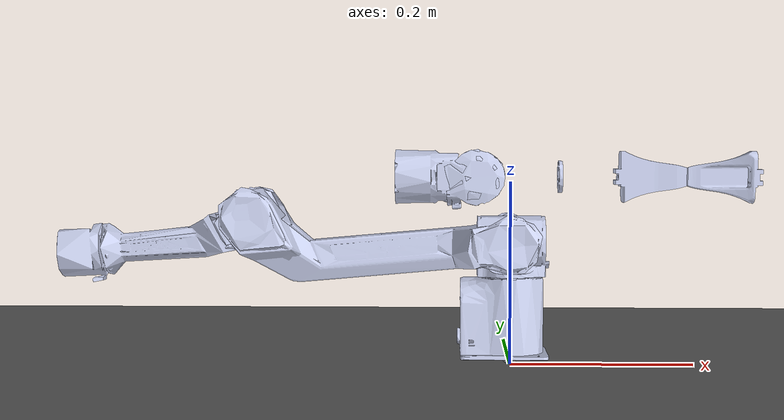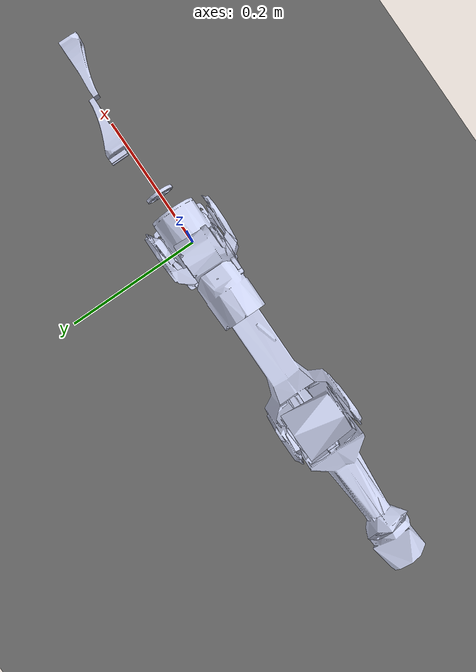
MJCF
<mujoco model="piper_description">
  <option iterations="50" timestep="0.001" solver="PGS" gravity="0 0 -9.81" />

  <compiler angle="radian" meshdir="meshes" eulerseq="zyx" autolimits="true" />

  <default>
    <joint limited="true" damping="0.01" armature="0.01" frictionloss="0.01" />
    <geom condim="4" contype="1" conaffinity="15" friction="0.9 0.2 0.2" solref="0.001 2" />
    <motor ctrllimited="true" />
    <equality solref="0.001 2" />
    <default class="visualgeom">
      <geom material="visualgeom" condim="1" contype="0" conaffinity="0" />
    </default>
  </default>

  <asset>
    <mesh name="base_link" file="base_link.STL" />
    <mesh name="link1" file="link1.STL" />
    <mesh name="link2" file="link2.STL" />
    <mesh name="link3" file="link3.STL" />
    <mesh name="link4" file="link4.STL" />
    <mesh name="link5" file="link5.STL" />
    <mesh name="link6" file="link6.STL" />
    <mesh name="link7" file="link7.STL" />
    <mesh name="link8" file="link8.STL" />
    <texture name="texplane" type="2d" builtin="checker" rgb1=".0 .0 .0" rgb2=".8 .8 .8" width="100" height="100" />
    <material name="matplane" reflectance="0." texture="texplane" texrepeat="1 1" texuniform="true" />
    <material name="visualgeom" rgba="0.5 0.9 0.2 1" />
  </asset>

  <worldbody>
    <light directional="true" diffuse="0.4 0.4 0.4" specular="0.1 0.1 0.1" pos="0 0 5.0" dir="0 0 -1" castshadow="false" />
    <light directional="true" diffuse="0.6 0.6 0.6" specular="0.2 0.2 0.2" pos="0 0 4" dir="0 0 -1" />
    <geom name="ground" type="plane" pos="0 0 0" size="100 100 0.001" quat="1 0 0 0" material="matplane" condim="3" conaffinity="15" />
    <camera name="fixed" pos="0 -3.0 0.5" xyaxes="1 0 0 0 0 1" />
    <camera name="track" mode="trackcom" pos="0 -3.0 0.5" xyaxes="1 0 0 0 0 1" />
    <body name="root" pos="0 0 0.01" quat="1 0 0 0">
      <freejoint name="root" />
      <site name="imu" size="0.01" pos="0 0 0" />
      <geom type="mesh" contype="1" conaffinity="0" group="1" density="0" rgba="0.792157 0.819608 0.933333 1" mesh="base_link" class="visualgeom" />
      <geom type="mesh" rgba="0.792157 0.819608 0.933333 1" mesh="base_link" />
      <geom type="mesh" rgba="0.792157 0.819608 0.933333 1" mesh="base_link" contype="1" conaffinity="0" density="0" group="1" class="visualgeom" />
      <geom type="mesh" rgba="0.792157 0.819608 0.933333 1" mesh="base_link" />
      <body name="link1" pos="0 0 0.123" quat="0.707105 0 0 -0.707108">
        <inertial pos="0.00131676 0.000310289 -0.00922875" quat="0.557105 0.432155 0.377373 0.600388" mass="0.097868" diaginertia="9.25942e-05 8.3083e-05 7.69469e-05" />
        <joint name="joint1" pos="0 0 0" axis="0 0 1" range="-2.618 2.618" actuatorfrcrange="-100 100" />
        <geom type="mesh" contype="1" conaffinity="0" group="1" density="0" rgba="0.792157 0.819608 0.933333 1" mesh="link1" class="visualgeom" />
        <geom type="mesh" rgba="0.792157 0.819608 0.933333 1" mesh="link1" />
        <geom type="mesh" rgba="0.792157 0.819608 0.933333 1" mesh="link1" contype="1" conaffinity="0" density="0" group="1" class="visualgeom" />
        <geom type="mesh" rgba="0.792157 0.819608 0.933333 1" mesh="link1" />
        <body name="link2" quat="0.524588 0.474136 -0.524592 -0.474136">
          <inertial pos="0.147616 -0.017426 0.00175953" quat="0.0107531 0.706346 -0.0276284 0.707246" mass="0.289571" diaginertia="0.00177449 0.0017305 0.000145443" />
          <joint name="joint2" pos="0 0 0" axis="0 0 1" range="0 3.14" actuatorfrcrange="-100 100" />
          <geom type="mesh" contype="1" conaffinity="0" group="1" density="0" rgba="0.792157 0.819608 0.933333 1" mesh="link2" class="visualgeom" />
          <geom type="mesh" rgba="0.792157 0.819608 0.933333 1" mesh="link2" />
          <geom type="mesh" rgba="0.792157 0.819608 0.933333 1" mesh="link2" contype="1" conaffinity="0" density="0" group="1" class="visualgeom" />
          <geom type="mesh" rgba="0.792157 0.819608 0.933333 1" mesh="link2" />
          <body name="link3" pos="0.28503 0 0" quat="0.770418 0 0 0.637539">
            <inertial pos="0.0156727 0.104467 0.000508487" quat="0.506574 0.477898 -0.524055 0.490268" mass="0.290583" diaginertia="0.000241862 0.000222142 0.000100381" />
            <joint name="joint3" pos="0 0 0" axis="0 0 1" range="-2.967 0" actuatorfrcrange="-100 100" />
            <geom type="mesh" contype="1" conaffinity="0" group="1" density="0" rgba="0.792157 0.819608 0.933333 1" mesh="link3" class="visualgeom" />
            <geom type="mesh" rgba="0.792157 0.819608 0.933333 1" mesh="link3" />
            <geom type="mesh" rgba="0.792157 0.819608 0.933333 1" mesh="link3" contype="1" conaffinity="0" density="0" group="1" class="visualgeom" />
            <geom type="mesh" rgba="0.792157 0.819608 0.933333 1" mesh="link3" />
            <body name="link4" pos="0.021984 0.25075 0" quat="0.707105 -0.707108 0 0">
              <inertial pos="0.000276465 -0.00102804 -0.00472831" quat="0.492305 0.505285 0.503294 0.499017" mass="0.127087" diaginertia="4.87057e-05 4.10595e-05 3.82001e-05" />
              <joint name="joint4" pos="0 0 0" axis="0 0 -1" range="-1.832 1.832" actuatorfrcrange="-100 100" />
              <geom type="mesh" contype="1" conaffinity="0" group="1" density="0" rgba="0.792157 0.819608 0.933333 1" mesh="link4" class="visualgeom" />
              <geom type="mesh" rgba="0.792157 0.819608 0.933333 1" mesh="link4" />
              <geom type="mesh" rgba="0.792157 0.819608 0.933333 1" mesh="link4" contype="1" conaffinity="0" density="0" group="1" class="visualgeom" />
              <geom type="mesh" rgba="0.792157 0.819608 0.933333 1" mesh="link4" />
              <body name="link5" quat="0.706432 0.706435 -0.0308433 0.0308435">
                <inertial pos="8.82261e-05 0.0566829 -0.00196119" quat="0.507447 0.490986 0.506887 0.494466" mass="0.144711" diaginertia="5.63237e-05 4.88652e-05 4.39642e-05" />
                <joint name="joint5" pos="0 0 0" axis="0 0 1" range="-1.22 1.22" actuatorfrcrange="-100 100" />
                <geom type="mesh" contype="1" conaffinity="0" group="1" density="0" rgba="0.792157 0.819608 0.933333 1" mesh="link5" class="visualgeom" />
                <geom type="mesh" rgba="0.792157 0.819608 0.933333 1" mesh="link5" />
                <geom type="mesh" rgba="0.792157 0.819608 0.933333 1" mesh="link5" contype="1" conaffinity="0" density="0" group="1" class="visualgeom" />
                <geom type="mesh" rgba="0.792157 0.819608 0.933333 1" mesh="link5" />
                <body name="link6" pos="0 0.091 0.0014165" quat="0.499998 -0.5 -0.5 -0.500002">
                  <inertial pos="9.41121e-09 0.00034121 0.0342123" quat="0.00199308 0.707103 0.00226857 0.707104" mass="0.150196" diaginertia="0.000118283 9.9975e-05 4.3175e-05" />
                  <joint name="joint6" pos="0 0 0" axis="0 0 -1" range="-3.14 3.14" actuatorfrcrange="-100 100" />
                  <geom type="mesh" contype="1" conaffinity="0" group="1" density="0" rgba="0.792157 0.819608 0.933333 1" mesh="link6" class="visualgeom" />
                  <geom type="mesh" rgba="0.792157 0.819608 0.933333 1" mesh="link6" />
                  <geom type="mesh" rgba="0.792157 0.819608 0.933333 1" mesh="link6" contype="1" conaffinity="0" density="0" group="1" class="visualgeom" />
                  <geom type="mesh" rgba="0.792157 0.819608 0.933333 1" mesh="link6" />
                  <body name="link7" pos="0 0 0.13503" quat="0.499998 0.5 0.500002 0.5">
                    <inertial pos="-0.000277796 -0.0467674 -0.0092103" quat="0.46134 0.536174 -0.553273 0.439968" mass="0.0264823" diaginertia="1.45134e-05 1.0004e-05 5.87021e-06" />
                    <joint name="joint7" pos="0 0 0" axis="0 0 -1" type="slide" range="-0.038 0" actuatorfrcrange="-100 100" />
                    <geom type="mesh" contype="1" conaffinity="0" group="1" density="0" rgba="0.792157 0.819608 0.933333 1" mesh="link7" class="visualgeom" />
                    <geom type="mesh" rgba="0.792157 0.819608 0.933333 1" mesh="link7" />
                    <geom type="mesh" rgba="0.792157 0.819608 0.933333 1" mesh="link7" contype="1" conaffinity="0" density="0" group="1" class="visualgeom" />
                    <geom type="mesh" rgba="0.792157 0.819608 0.933333 1" mesh="link7" />
                  </body>
                  <body name="link8" pos="0 0 0.13503" quat="0.499998 -0.5 -0.500002 0.5">
                    <inertial pos="0.000277796 0.0467674 -0.0092103" quat="0.553273 0.439968 -0.46134 0.536174" mass="0.0264822" diaginertia="1.45133e-05 1.0004e-05 5.87021e-06" />
                    <joint name="joint8" pos="0 0 0" axis="0 0 1" type="slide" range="0 0.038" actuatorfrcrange="-100 100" />
                    <geom type="mesh" contype="1" conaffinity="0" group="1" density="0" rgba="0.792157 0.819608 0.933333 1" mesh="link8" class="visualgeom" />
                    <geom type="mesh" rgba="0.792157 0.819608 0.933333 1" mesh="link8" />
                    <geom type="mesh" rgba="0.792157 0.819608 0.933333 1" mesh="link8" contype="1" conaffinity="0" density="0" group="1" class="visualgeom" />
                    <geom type="mesh" rgba="0.792157 0.819608 0.933333 1" mesh="link8" />
                  </body>
                </body>
              </body>
            </body>
          </body>
        </body>
      </body>
    </body>
  </worldbody>

  <actuator>
    <motor name="joint1" joint="joint1" ctrllimited="true" ctrlrange="-100 100" gear="1" />
    <motor name="joint2" joint="joint2" ctrllimited="true" ctrlrange="-100 100" gear="1" />
    <motor name="joint3" joint="joint3" ctrllimited="true" ctrlrange="-100 100" gear="1" />
    <motor name="joint4" joint="joint4" ctrllimited="true" ctrlrange="-100 100" gear="1" />
    <motor name="joint5" joint="joint5" ctrllimited="true" ctrlrange="-100 100" gear="1" />
    <motor name="joint6" joint="joint6" ctrllimited="true" ctrlrange="-100 100" gear="1" />
    <motor name="joint7" joint="joint7" ctrllimited="true" ctrlrange="-100 100" gear="1" />
    <motor name="joint8" joint="joint8" ctrllimited="true" ctrlrange="-100 100" gear="1" />
  </actuator>

  <sensor>
    <actuatorpos name="joint1_p" actuator="joint1" />
    <actuatorvel name="joint1_v" actuator="joint1" />
    <actuatorfrc name="joint1_f" actuator="joint1" noise="0.001" />
    <actuatorpos name="joint2_p" actuator="joint2" />
    <actuatorvel name="joint2_v" actuator="joint2" />
    <actuatorfrc name="joint2_f" actuator="joint2" noise="0.001" />
    <actuatorpos name="joint3_p" actuator="joint3" />
    <actuatorvel name="joint3_v" actuator="joint3" />
    <actuatorfrc name="joint3_f" actuator="joint3" noise="0.001" />
    <actuatorpos name="joint4_p" actuator="joint4" />
    <actuatorvel name="joint4_v" actuator="joint4" />
    <actuatorfrc name="joint4_f" actuator="joint4" noise="0.001" />
    <actuatorpos name="joint5_p" actuator="joint5" />
    <actuatorvel name="joint5_v" actuator="joint5" />
    <actuatorfrc name="joint5_f" actuator="joint5" noise="0.001" />
    <actuatorpos name="joint6_p" actuator="joint6" />
    <actuatorvel name="joint6_v" actuator="joint6" />
    <actuatorfrc name="joint6_f" actuator="joint6" noise="0.001" />
    <actuatorpos name="joint7_p" actuator="joint7" />
    <actuatorvel name="joint7_v" actuator="joint7" />
    <actuatorfrc name="joint7_f" actuator="joint7" noise="0.001" />
    <actuatorpos name="joint8_p" actuator="joint8" />
    <actuatorvel name="joint8_v" actuator="joint8" />
    <actuatorfrc name="joint8_f" actuator="joint8" noise="0.001" />
    <framequat name="orientation" objtype="site" noise="0.001" objname="imu" />
    <gyro name="angular-velocity" site="imu" noise="0.005" cutoff="34.9" />
  </sensor>
</mujoco>
